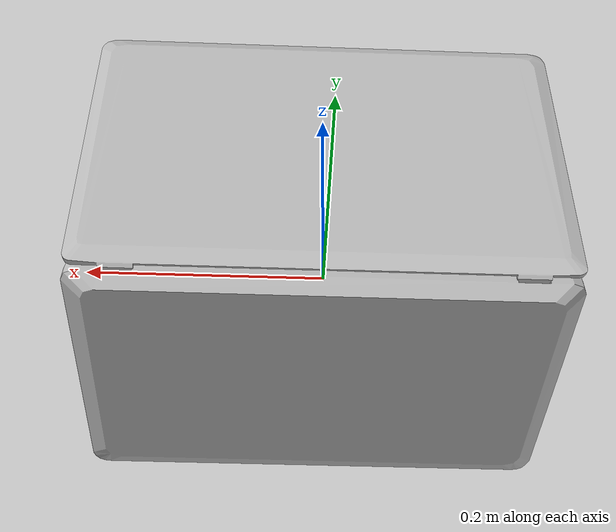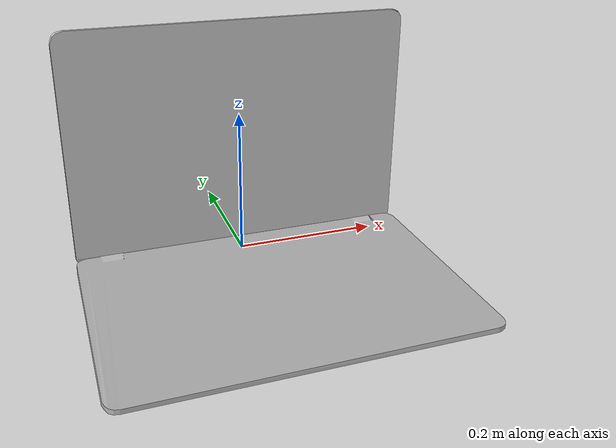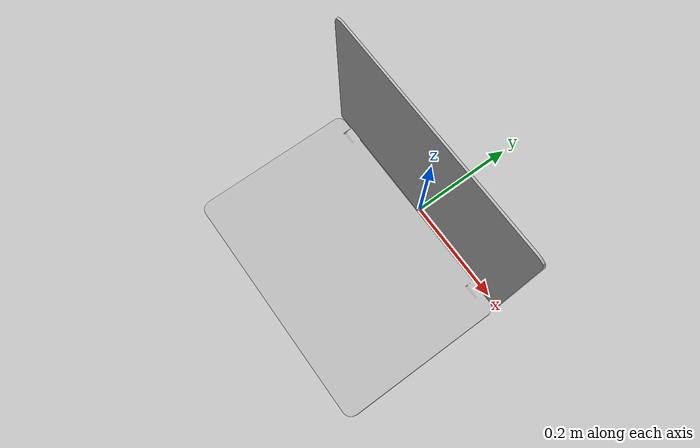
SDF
<?xml version='1.0'?>
<sdf version='1.6'>
  <model name='laptop'>
    <link name='link_1'>
      <visual name='visual'>
        <pose frame=''>0 0 0 0 0 0</pose>
        <geometry>
          <mesh>
            <uri>model://laptop/meshes/laptop.dae</uri>
            <scale>1.0 1.0 1.0</scale>
          </mesh>
        </geometry>
        <cast_shadows>0</cast_shadows>
        <transparency>0</transparency>
      </visual>

    </link>

    <static>1</static>
    <allow_auto_disable>1</allow_auto_disable>
  </model>
</sdf>
